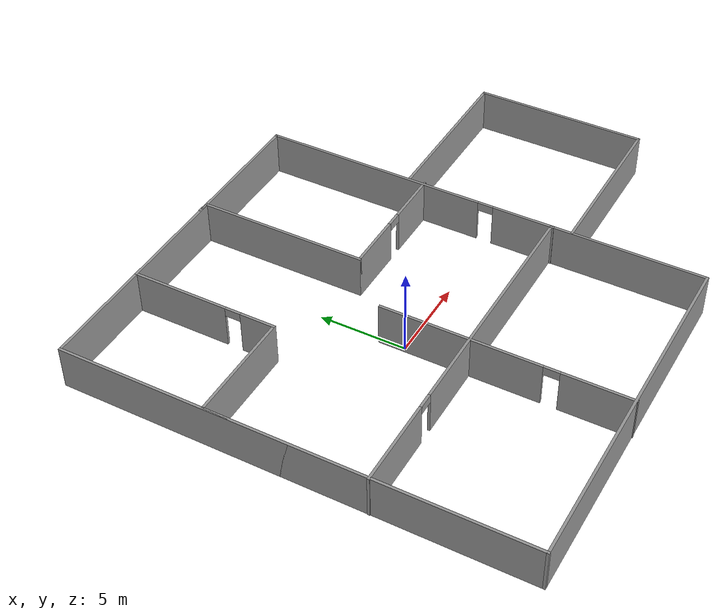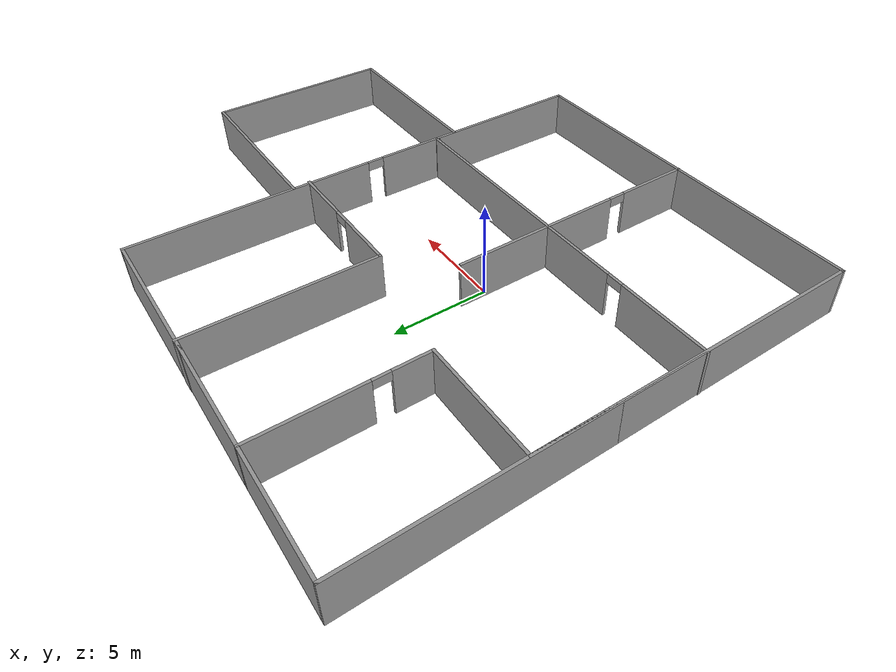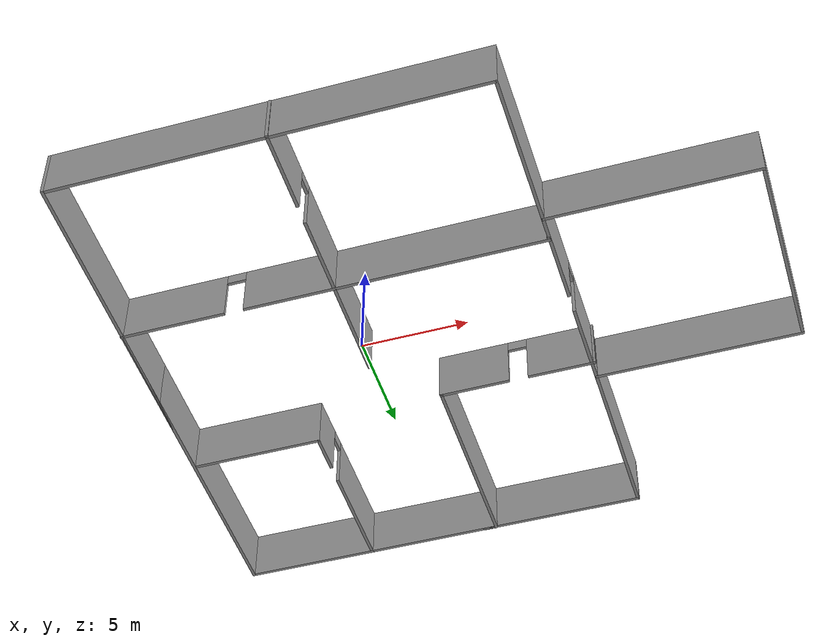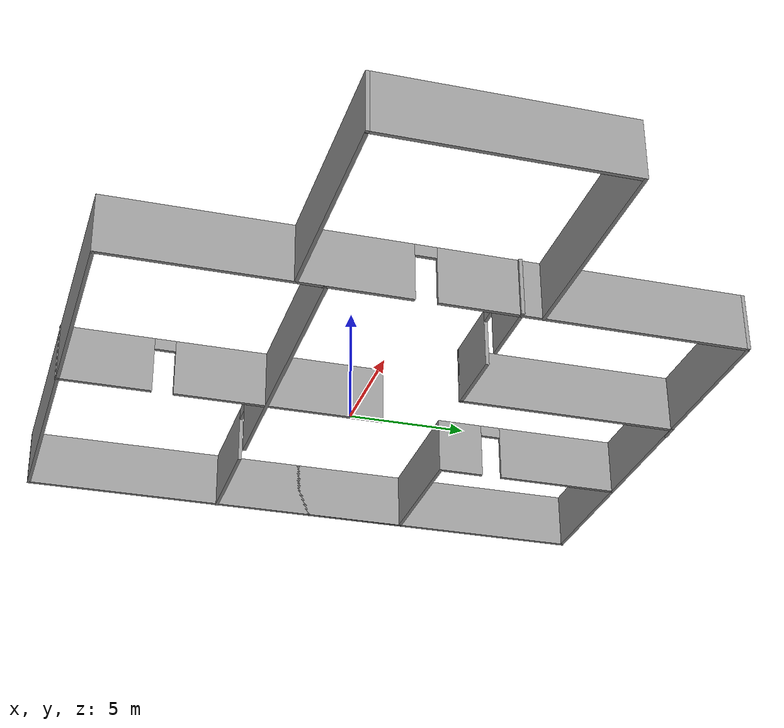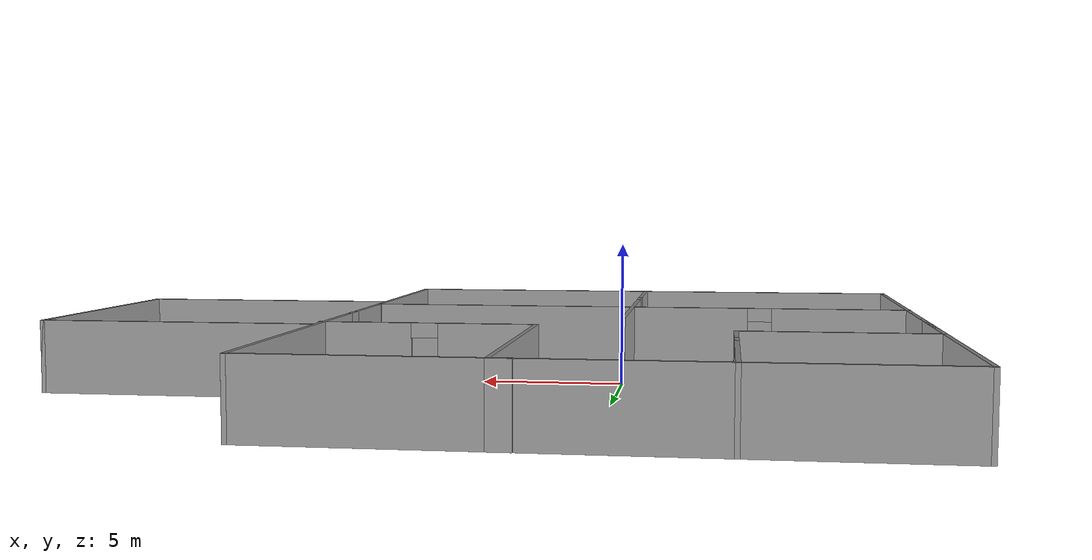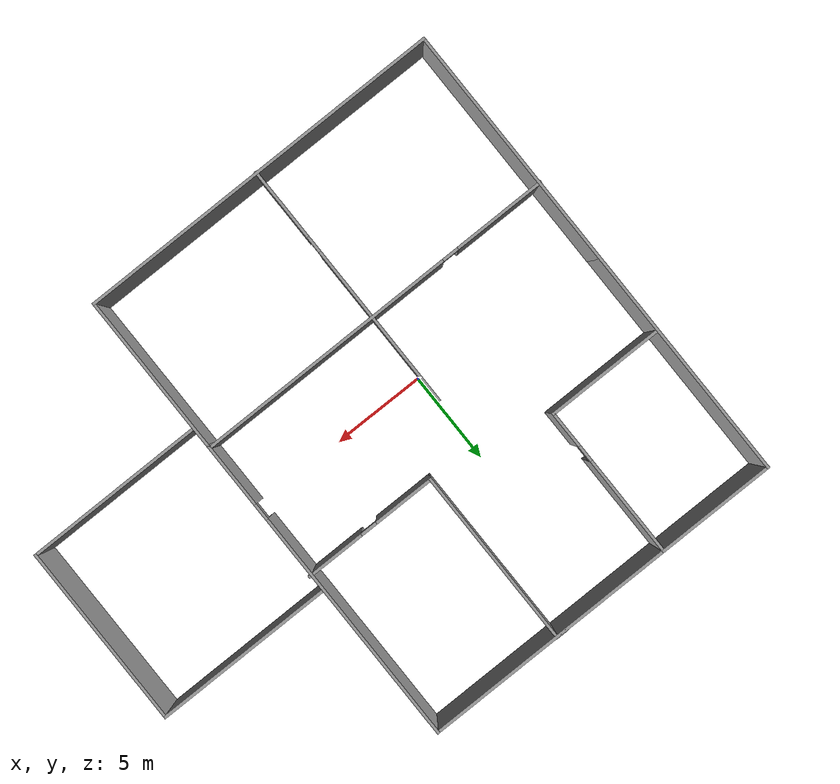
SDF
<?xml version='1.0'?>
<sdf version='1.6'>
  <model name='White_walls_and_doors'>
    <pose frame=''>4.54029 0.620893 0 0 -0 0</pose>
    <link name='Wall_18'>
      <collision name='Wall_18_Collision'>
        <geometry>
          <box>
            <size>20.25 0.15 2.5</size>
          </box>
        </geometry>
        <pose frame=''>0 0 1.25 0 -0 0</pose>
      </collision>
      <visual name='Wall_18_Visual'>
        <pose frame=''>0 0 1.25 0 -0 0</pose>
        <geometry>
          <box>
            <size>20.25 0.15 2.5</size>
          </box>
        </geometry>
        <material>
          <script>
            <uri>file://media/materials/scripts/gazebo.material</uri>
            <name>Gazebo/Grey</name>
          </script>
          <ambient>1 1 1 1</ambient>
        </material>
      </visual>
      <pose frame=''>-4.80227 -13.0434 0 0 -0 3.14159</pose>
    </link>
    <link name='Wall_19'>
      <collision name='Wall_19_Collision'>
        <geometry>
          <box>
            <size>26.25 0.15 2.5</size>
          </box>
        </geometry>
        <pose frame=''>0 0 1.25 0 -0 0</pose>
      </collision>
      <visual name='Wall_19_Visual'>
        <pose frame=''>0 0 1.25 0 -0 0</pose>
        <geometry>
          <box>
            <size>26.25 0.15 2.5</size>
          </box>
        </geometry>
        <material>
          <script>
            <uri>file://media/materials/scripts/gazebo.material</uri>
            <name>Gazebo/Grey</name>
          </script>
          <ambient>1 1 1 1</ambient>
        </material>
      </visual>
      <pose frame=''>-14.8523 0.006615 0 0 -0 1.5708</pose>
    </link>
    <link name='Wall_20'>
      <collision name='Wall_20_Collision'>
        <geometry>
          <box>
            <size>6.5 0.15 2.5</size>
          </box>
        </geometry>
        <pose frame=''>0 0 1.25 0 -0 0</pose>
      </collision>
      <visual name='Wall_20_Visual'>
        <pose frame=''>0 0 1.25 0 -0 0</pose>
        <geometry>
          <box>
            <size>6.5 0.15 2.5</size>
          </box>
        </geometry>
        <material>
          <script>
            <uri>file://media/materials/scripts/gazebo.material</uri>
            <name>Gazebo/Grey</name>
          </script>
          <ambient>1 1 1 1</ambient>
        </material>
      </visual>
      <pose frame=''>-11.6773 13.0566 0 0 -0 0</pose>
    </link>
    <link name='Wall_21'>
      <pose frame=''>-8.50227 8.88162 0 0 0 -1.5708</pose>
      <visual name='Wall_21_Visual_0'>
        <pose frame=''>-1.47112 0 1.25 0 -0 0</pose>
        <geometry>
          <box>
            <size>5.55776 0.15 2.5</size>
          </box>
        </geometry>
        <material>
          <script>
            <uri>file://media/materials/scripts/gazebo.material</uri>
            <name>Gazebo/Grey</name>
          </script>
          <ambient>1 1 1 1</ambient>
        </material>
      </visual>
      <collision name='Wall_21_Collision_0'>
        <geometry>
          <box>
            <size>5.55776 0.15 2.5</size>
          </box>
        </geometry>
        <pose frame=''>-1.47112 0 1.25 0 -0 0</pose>
      </collision>
      <visual name='Wall_21_Visual_1'>
        <pose frame=''>3.22888 0 1.25 0 -0 0</pose>
        <geometry>
          <box>
            <size>2.04224 0.15 2.5</size>
          </box>
        </geometry>
        <material>
          <script>
            <uri>file://media/materials/scripts/gazebo.material</uri>
            <name>Gazebo/Grey</name>
          </script>
          <ambient>1 1 1 1</ambient>
        </material>
      </visual>
      <collision name='Wall_21_Collision_1'>
        <geometry>
          <box>
            <size>2.04224 0.15 2.5</size>
          </box>
        </geometry>
        <pose frame=''>3.22888 0 1.25 0 -0 0</pose>
      </collision>
      <visual name='Wall_21_Visual_2'>
        <pose frame=''>1.75776 0 2.25 0 -0 0</pose>
        <geometry>
          <box>
            <size>0.9 0.15 0.5</size>
          </box>
        </geometry>
        <material>
          <script>
            <uri>file://media/materials/scripts/gazebo.material</uri>
            <name>Gazebo/Grey</name>
          </script>
          <ambient>1 1 1 1</ambient>
        </material>
      </visual>
      <collision name='Wall_21_Collision_2'>
        <geometry>
          <box>
            <size>0.9 0.15 0.5</size>
          </box>
        </geometry>
        <pose frame=''>1.75776 0 2.25 0 -0 0</pose>
      </collision>
    </link>
    <link name='Wall_22'>
      <collision name='Wall_22_Collision'>
        <geometry>
          <box>
            <size>6.5 0.15 2.5</size>
          </box>
        </geometry>
        <pose frame=''>0 0 1.25 0 -0 0</pose>
      </collision>
      <visual name='Wall_22_Visual'>
        <pose frame=''>0 0 1.25 0 -0 0</pose>
        <geometry>
          <box>
            <size>6.5 0.15 2.5</size>
          </box>
        </geometry>
        <material>
          <script>
            <uri>file://media/materials/scripts/gazebo.material</uri>
            <name>Gazebo/Grey</name>
          </script>
          <ambient>1 1 1 1</ambient>
        </material>
      </visual>
      <pose frame=''>-11.6773 4.70662 0 0 -0 3.14159</pose>
    </link>
    <link name='Wall_23'>
      <collision name='Wall_23_Collision'>
        <geometry>
          <box>
            <size>9 0.15 2.5</size>
          </box>
        </geometry>
        <pose frame=''>0 0 1.25 0 -0 0</pose>
      </collision>
      <visual name='Wall_23_Visual'>
        <pose frame=''>0 0 1.25 0 -0 0</pose>
        <geometry>
          <box>
            <size>9 0.15 2.5</size>
          </box>
        </geometry>
        <material>
          <script>
            <uri>file://media/materials/scripts/gazebo.material</uri>
            <name>Gazebo/Grey</name>
          </script>
          <ambient>1 1 1 1</ambient>
        </material>
      </visual>
      <pose frame=''>-14.8523 0.281615 0 0 0 -1.5708</pose>
    </link>
    <link name='Wall_31'>
      <pose frame=''>5.24773 0.006615 0 0 -0 1.5708</pose>
      <visual name='Wall_31_Visual_0'>
        <pose frame=''>-6.97193 0 1.25 0 -0 0</pose>
        <geometry>
          <box>
            <size>12.3061 0.15 2.5</size>
          </box>
        </geometry>
        <material>
          <script>
            <uri>file://media/materials/scripts/gazebo.material</uri>
            <name>Gazebo/Grey</name>
          </script>
          <ambient>1 1 1 1</ambient>
        </material>
      </visual>
      <collision name='Wall_31_Collision_0'>
        <geometry>
          <box>
            <size>12.3061 0.15 2.5</size>
          </box>
        </geometry>
        <pose frame=''>-6.97193 0 1.25 0 -0 0</pose>
      </collision>
      <visual name='Wall_31_Visual_1'>
        <pose frame=''>6.60307 0 1.25 0 -0 0</pose>
        <geometry>
          <box>
            <size>13.0439 0.15 2.5</size>
          </box>
        </geometry>
        <material>
          <script>
            <uri>file://media/materials/scripts/gazebo.material</uri>
            <name>Gazebo/Grey</name>
          </script>
          <ambient>1 1 1 1</ambient>
        </material>
      </visual>
      <collision name='Wall_31_Collision_1'>
        <geometry>
          <box>
            <size>13.0439 0.15 2.5</size>
          </box>
        </geometry>
        <pose frame=''>6.60307 0 1.25 0 -0 0</pose>
      </collision>
      <visual name='Wall_31_Visual_2'>
        <pose frame=''>-0.368859 0 2.25 0 -0 0</pose>
        <geometry>
          <box>
            <size>0.9 0.15 0.5</size>
          </box>
        </geometry>
        <material>
          <script>
            <uri>file://media/materials/scripts/gazebo.material</uri>
            <name>Gazebo/Grey</name>
          </script>
          <ambient>1 1 1 1</ambient>
        </material>
      </visual>
      <collision name='Wall_31_Collision_2'>
        <geometry>
          <box>
            <size>0.9 0.15 0.5</size>
          </box>
        </geometry>
        <pose frame=''>-0.368859 0 2.25 0 -0 0</pose>
      </collision>
    </link>
    <link name='Wall_33'>
      <collision name='Wall_33_Collision'>
        <geometry>
          <box>
            <size>13.9 0.15 2.5</size>
          </box>
        </geometry>
        <pose frame=''>0 0 1.25 0 -0 0</pose>
      </collision>
      <visual name='Wall_33_Visual'>
        <pose frame=''>0 0 1.25 0 -0 0</pose>
        <geometry>
          <box>
            <size>13.9 0.15 2.5</size>
          </box>
        </geometry>
        <material>
          <script>
            <uri>file://media/materials/scripts/gazebo.material</uri>
            <name>Gazebo/Grey</name>
          </script>
          <ambient>1 1 1 1</ambient>
        </material>
      </visual>
      <pose frame=''>-1.62727 13.0566 0 0 -0 0</pose>
    </link>
    <link name='Wall_35'>
      <collision name='Wall_35_Collision'>
        <geometry>
          <box>
            <size>0.75 0.15 2.5</size>
          </box>
        </geometry>
        <pose frame=''>0 0 1.25 0 -0 0</pose>
      </collision>
      <visual name='Wall_35_Visual'>
        <pose frame=''>0 0 1.25 0 -0 0</pose>
        <geometry>
          <box>
            <size>0.75 0.15 2.5</size>
          </box>
        </geometry>
        <material>
          <script>
            <uri>file://media/materials/scripts/gazebo.material</uri>
            <name>Gazebo/Grey</name>
          </script>
          <ambient>1 1 1 1</ambient>
        </material>
      </visual>
      <pose frame=''>-2.2932 13.0776 0 0 -0 0</pose>
    </link>
    <link name='Wall_36'>
      <collision name='Wall_36_Collision'>
        <geometry>
          <box>
            <size>9.75 0.15 2.5</size>
          </box>
        </geometry>
        <pose frame=''>0 0 1.25 0 -0 0</pose>
      </collision>
      <visual name='Wall_36_Visual'>
        <pose frame=''>0 0 1.25 0 -0 0</pose>
        <geometry>
          <box>
            <size>9.75 0.15 2.5</size>
          </box>
        </geometry>
        <material>
          <script>
            <uri>file://media/materials/scripts/gazebo.material</uri>
            <name>Gazebo/Grey</name>
          </script>
          <ambient>1 1 1 1</ambient>
        </material>
      </visual>
      <pose frame=''>-1.9932 8.27759 0 0 0 -1.5708</pose>
    </link>
    <link name='Wall_37'>
      <pose frame=''>1.6818 3.47759 0 0 -0 0</pose>
      <visual name='Wall_37_Visual_0'>
        <pose frame=''>-2.06159 0 1.25 0 -0 0</pose>
        <geometry>
          <box>
            <size>3.37682 0.15 2.5</size>
          </box>
        </geometry>
        <material>
          <script>
            <uri>file://media/materials/scripts/gazebo.material</uri>
            <name>Gazebo/Grey</name>
          </script>
          <ambient>1 1 1 1</ambient>
        </material>
      </visual>
      <collision name='Wall_37_Collision_0'>
        <geometry>
          <box>
            <size>3.37682 0.15 2.5</size>
          </box>
        </geometry>
        <pose frame=''>-2.06159 0 1.25 0 -0 0</pose>
      </collision>
      <visual name='Wall_37_Visual_1'>
        <pose frame=''>2.13841 0 1.25 0 -0 0</pose>
        <geometry>
          <box>
            <size>3.22318 0.15 2.5</size>
          </box>
        </geometry>
        <material>
          <script>
            <uri>file://media/materials/scripts/gazebo.material</uri>
            <name>Gazebo/Grey</name>
          </script>
          <ambient>1 1 1 1</ambient>
        </material>
      </visual>
      <collision name='Wall_37_Collision_1'>
        <geometry>
          <box>
            <size>3.22318 0.15 2.5</size>
          </box>
        </geometry>
        <pose frame=''>2.13841 0 1.25 0 -0 0</pose>
      </collision>
      <visual name='Wall_37_Visual_2'>
        <pose frame=''>0.076818 0 2.25 0 -0 0</pose>
        <geometry>
          <box>
            <size>0.9 0.15 0.5</size>
          </box>
        </geometry>
        <material>
          <script>
            <uri>file://media/materials/scripts/gazebo.material</uri>
            <name>Gazebo/Grey</name>
          </script>
          <ambient>1 1 1 1</ambient>
        </material>
      </visual>
      <collision name='Wall_37_Collision_2'>
        <geometry>
          <box>
            <size>0.9 0.15 0.5</size>
          </box>
        </geometry>
        <pose frame=''>0.076818 0 2.25 0 -0 0</pose>
      </collision>
    </link>
    <link name='Wall_39'>
      <collision name='Wall_39_Collision'>
        <geometry>
          <box>
            <size>9.75 0.15 2.5</size>
          </box>
        </geometry>
        <pose frame=''>0 0 1.25 0 -0 0</pose>
      </collision>
      <visual name='Wall_39_Visual'>
        <pose frame=''>0 0 1.25 0 -0 0</pose>
        <geometry>
          <box>
            <size>9.75 0.15 2.5</size>
          </box>
        </geometry>
        <material>
          <script>
            <uri>file://media/materials/scripts/gazebo.material</uri>
            <name>Gazebo/Grey</name>
          </script>
          <ambient>1 1 1 1</ambient>
        </material>
      </visual>
      <pose frame=''>10.0814 4.38553 0 0 -0 0</pose>
    </link>
    <link name='Wall_40'>
      <collision name='Wall_40_Collision'>
        <geometry>
          <box>
            <size>10 0.15 2.5</size>
          </box>
        </geometry>
        <pose frame=''>0 0 1.25 0 -0 0</pose>
      </collision>
      <visual name='Wall_40_Visual'>
        <pose frame=''>0 0 1.25 0 -0 0</pose>
        <geometry>
          <box>
            <size>10 0.15 2.5</size>
          </box>
        </geometry>
        <material>
          <script>
            <uri>file://media/materials/scripts/gazebo.material</uri>
            <name>Gazebo/Grey</name>
          </script>
          <ambient>1 1 1 1</ambient>
        </material>
      </visual>
      <pose frame=''>14.8814 -0.539473 0 0 0 -1.5708</pose>
    </link>
    <link name='Wall_41'>
      <collision name='Wall_41_Collision'>
        <geometry>
          <box>
            <size>9.75 0.15 2.5</size>
          </box>
        </geometry>
        <pose frame=''>0 0 1.25 0 -0 0</pose>
      </collision>
      <visual name='Wall_41_Visual'>
        <pose frame=''>0 0 1.25 0 -0 0</pose>
        <geometry>
          <box>
            <size>9.75 0.15 2.5</size>
          </box>
        </geometry>
        <material>
          <script>
            <uri>file://media/materials/scripts/gazebo.material</uri>
            <name>Gazebo/Grey</name>
          </script>
          <ambient>1 1 1 1</ambient>
        </material>
      </visual>
      <pose frame=''>10.0814 -5.46447 0 0 -0 3.14159</pose>
    </link>
    <link name='Wall_43'>
      <collision name='Wall_43_Collision'>
        <geometry>
          <box>
            <size>0.25 0.15 2.5</size>
          </box>
        </geometry>
        <pose frame=''>0 0 1.25 0 -0 0</pose>
      </collision>
      <visual name='Wall_43_Visual'>
        <pose frame=''>0 0 1.25 0 -0 0</pose>
        <geometry>
          <box>
            <size>0.25 0.15 2.5</size>
          </box>
        </geometry>
        <material>
          <script>
            <uri>file://media/materials/scripts/gazebo.material</uri>
            <name>Gazebo/Grey</name>
          </script>
          <ambient>1 1 1 1</ambient>
        </material>
      </visual>
      <pose frame=''>5.21856 -4.31567 0 0 -0 1.5708</pose>
    </link>
    <link name='Wall_44'>
      <pose frame=''>-4.83144 -4.26567 0 0 -0 3.14159</pose>
      <visual name='Wall_44_Visual_0'>
        <pose frame=''>-2.9883 0 1.25 0 -0 0</pose>
        <geometry>
          <box>
            <size>14.2734 0.15 2.5</size>
          </box>
        </geometry>
        <material>
          <script>
            <uri>file://media/materials/scripts/gazebo.material</uri>
            <name>Gazebo/Grey</name>
          </script>
          <ambient>1 1 1 1</ambient>
        </material>
      </visual>
      <collision name='Wall_44_Collision_0'>
        <geometry>
          <box>
            <size>14.2734 0.15 2.5</size>
          </box>
        </geometry>
        <pose frame=''>-2.9883 0 1.25 0 -0 0</pose>
      </collision>
      <visual name='Wall_44_Visual_1'>
        <pose frame=''>7.5867 0 1.25 0 -0 0</pose>
        <geometry>
          <box>
            <size>5.07659 0.15 2.5</size>
          </box>
        </geometry>
        <material>
          <script>
            <uri>file://media/materials/scripts/gazebo.material</uri>
            <name>Gazebo/Grey</name>
          </script>
          <ambient>1 1 1 1</ambient>
        </material>
      </visual>
      <collision name='Wall_44_Collision_1'>
        <geometry>
          <box>
            <size>5.07659 0.15 2.5</size>
          </box>
        </geometry>
        <pose frame=''>7.5867 0 1.25 0 -0 0</pose>
      </collision>
      <visual name='Wall_44_Visual_2'>
        <pose frame=''>4.59841 0 2.25 0 -0 0</pose>
        <geometry>
          <box>
            <size>0.9 0.15 0.5</size>
          </box>
        </geometry>
        <material>
          <script>
            <uri>file://media/materials/scripts/gazebo.material</uri>
            <name>Gazebo/Grey</name>
          </script>
          <ambient>1 1 1 1</ambient>
        </material>
      </visual>
      <collision name='Wall_44_Collision_2'>
        <geometry>
          <box>
            <size>0.9 0.15 0.5</size>
          </box>
        </geometry>
        <pose frame=''>4.59841 0 2.25 0 -0 0</pose>
      </collision>
    </link>
    <link name='Wall_47'>
      <pose frame=''>-4.66563 -6.15259 0 0 -0 1.5708</pose>
      <visual name='Wall_47_Visual_0'>
        <pose frame=''>-5.00007 0 1.25 0 -0 0</pose>
        <geometry>
          <box>
            <size>3.99986 0.15 2.5</size>
          </box>
        </geometry>
        <material>
          <script>
            <uri>file://media/materials/scripts/gazebo.material</uri>
            <name>Gazebo/Grey</name>
          </script>
          <ambient>1 1 1 1</ambient>
        </material>
      </visual>
      <collision name='Wall_47_Collision_0'>
        <geometry>
          <box>
            <size>3.99986 0.15 2.5</size>
          </box>
        </geometry>
        <pose frame=''>-5.00007 0 1.25 0 -0 0</pose>
      </collision>
      <visual name='Wall_47_Visual_1'>
        <pose frame=''>2.44993 0 1.25 0 -0 0</pose>
        <geometry>
          <box>
            <size>9.10014 0.15 2.5</size>
          </box>
        </geometry>
        <material>
          <script>
            <uri>file://media/materials/scripts/gazebo.material</uri>
            <name>Gazebo/Grey</name>
          </script>
          <ambient>1 1 1 1</ambient>
        </material>
      </visual>
      <collision name='Wall_47_Collision_1'>
        <geometry>
          <box>
            <size>9.10014 0.15 2.5</size>
          </box>
        </geometry>
        <pose frame=''>2.44993 0 1.25 0 -0 0</pose>
      </collision>
      <visual name='Wall_47_Visual_2'>
        <pose frame=''>-2.55014 0 2.25 0 -0 0</pose>
        <geometry>
          <box>
            <size>0.9 0.15 0.5</size>
          </box>
        </geometry>
        <material>
          <script>
            <uri>file://media/materials/scripts/gazebo.material</uri>
            <name>Gazebo/Grey</name>
          </script>
          <ambient>1 1 1 1</ambient>
        </material>
      </visual>
      <collision name='Wall_47_Collision_2'>
        <geometry>
          <box>
            <size>0.9 0.15 0.5</size>
          </box>
        </geometry>
        <pose frame=''>-2.55014 0 2.25 0 -0 0</pose>
      </collision>
    </link>
    <static>1</static>
  </model>
</sdf>
